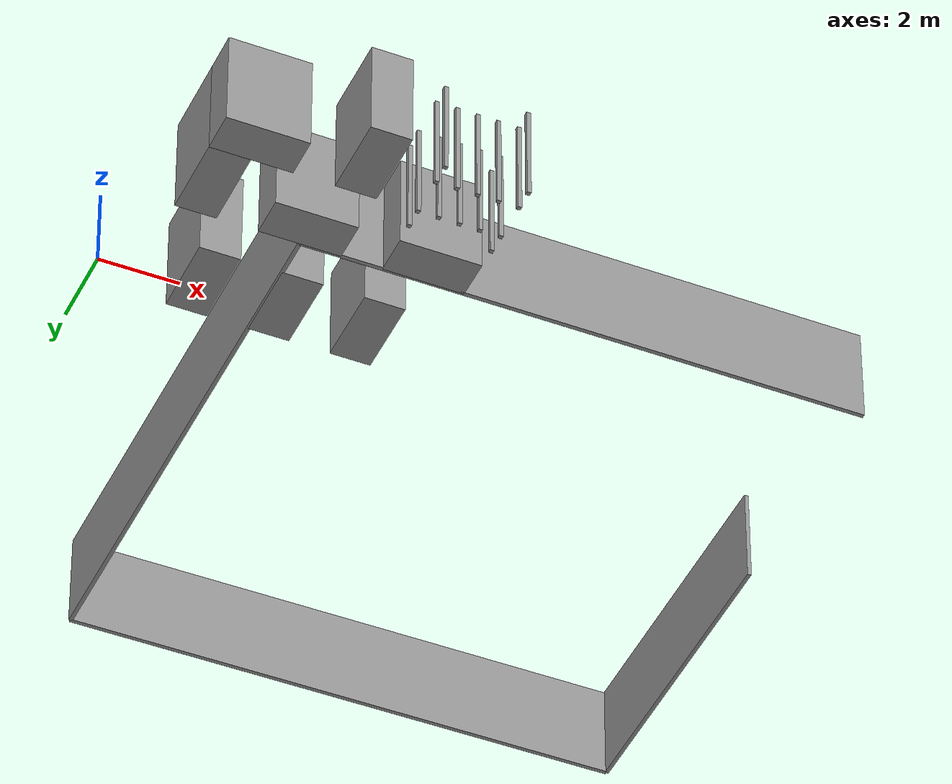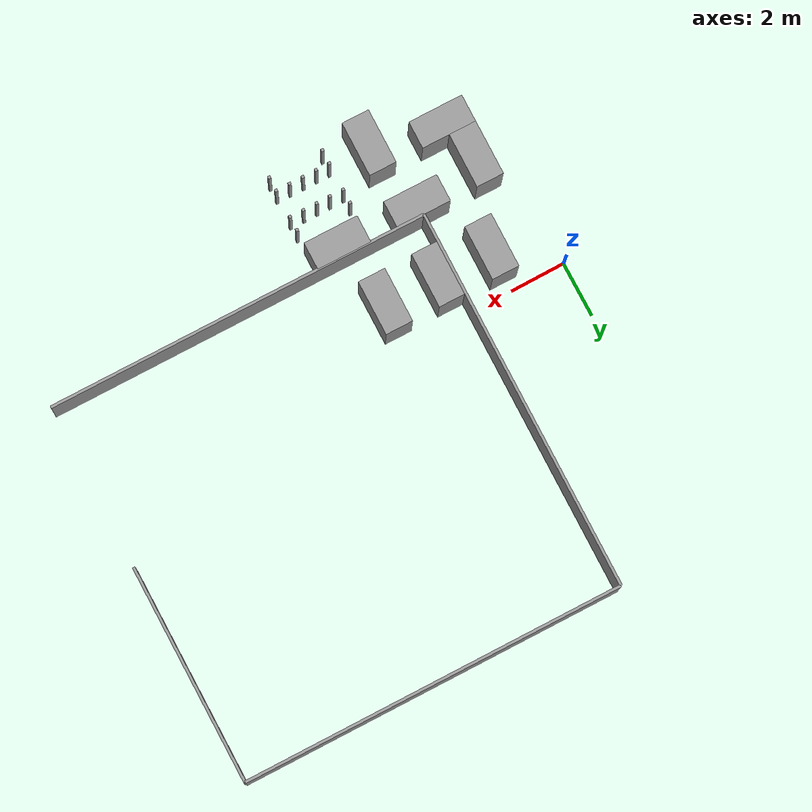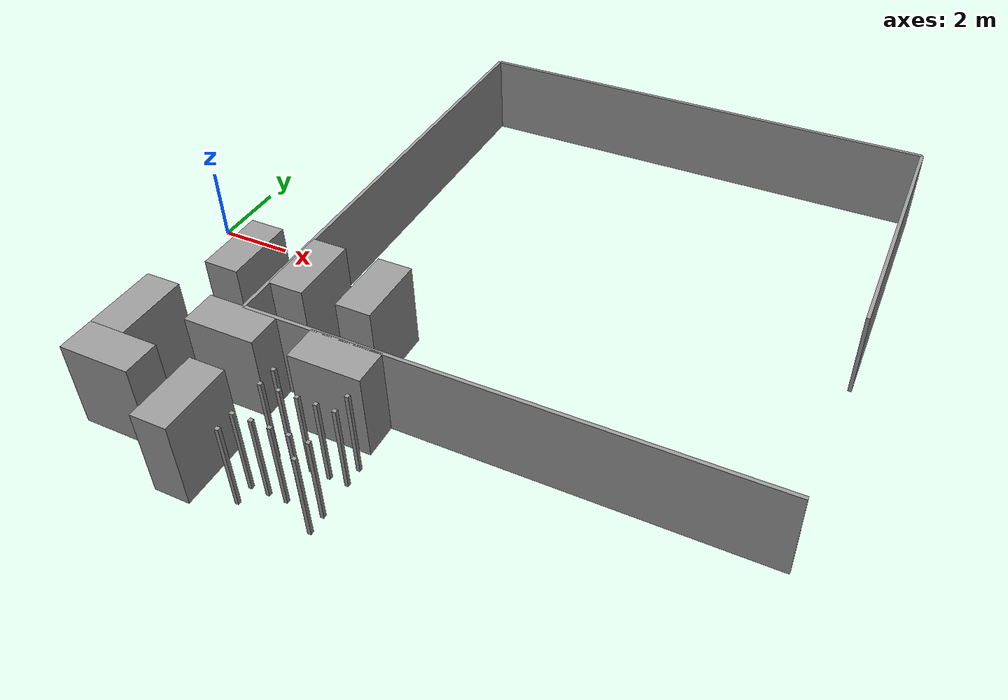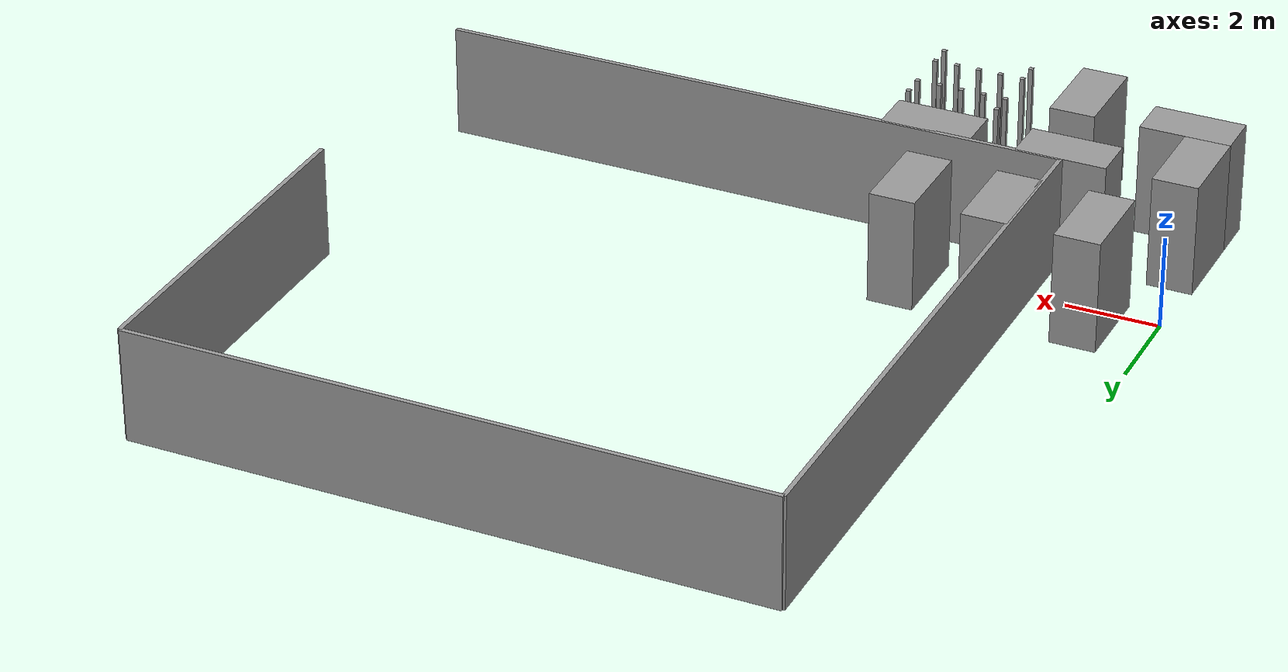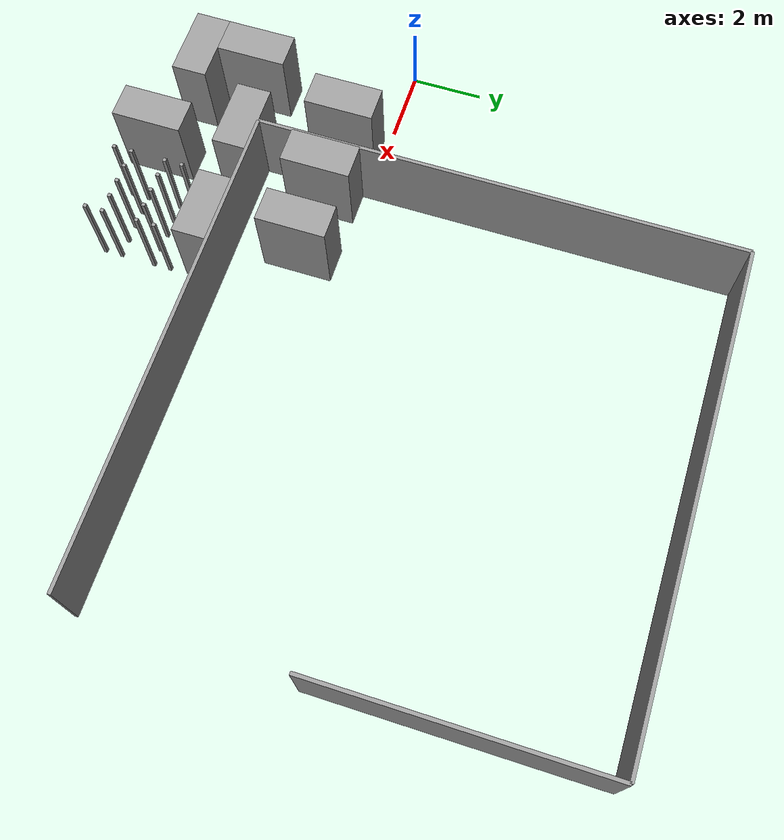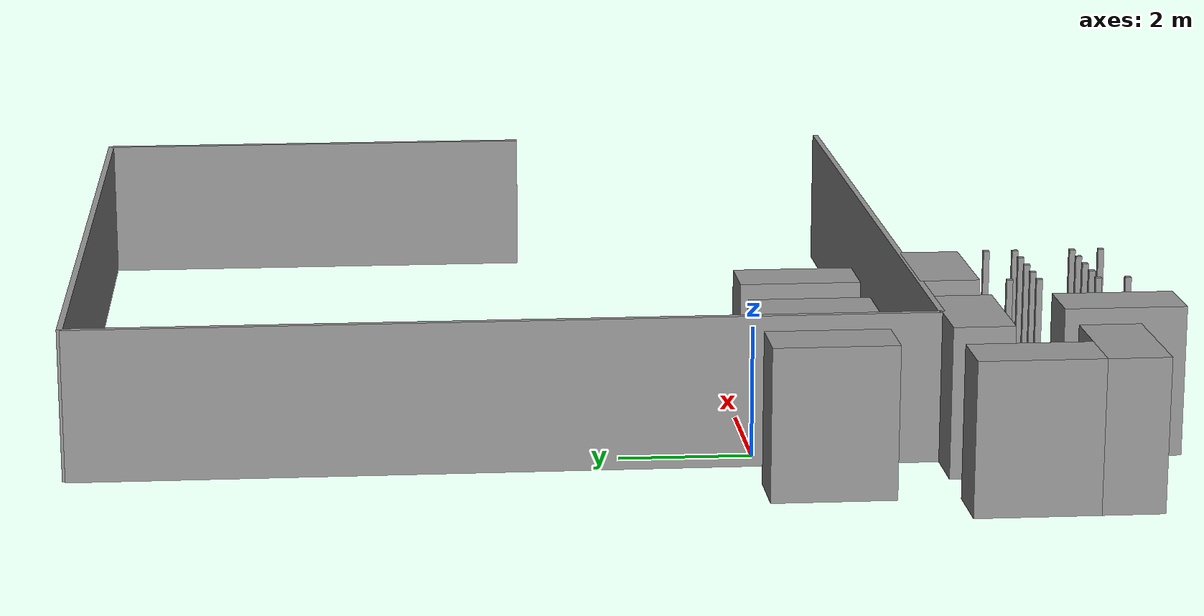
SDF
<?xml version='1.0'?>

<sdf version='1.6'>
  <model name='RFMaze'>

    <link name='Wall_0'>
      <collision name='col'>
        <geometry>
          <box>
            <size>14 0.1 2.5</size>
          </box>
        </geometry>
      </collision>
      <visual name='vis'>
        <geometry>
          <box>
            <size>14 0.1 2.5</size>
          </box>
        </geometry>
        <material>
          <script>
            <uri>file://media/materials/scripts/gazebo.material</uri>
            <name>Gazebo/Grey</name>
          </script>
          <ambient>1 1 1 1</ambient>
        </material>
      </visual>
      <pose>7 0 0 0 0 0</pose>
    </link>
    <link name='Wall_1'>
      <collision name='col'>
        <geometry>
          <box>
            <size>14 0.1 2.5</size>
          </box>
        </geometry>
      </collision>
      <visual name='vis'>
        <geometry>
          <box>
            <size>14 0.1 2.5</size>
          </box>
        </geometry>
        <material>
          <script>
            <uri>file://media/materials/scripts/gazebo.material</uri>
            <name>Gazebo/Grey</name>
          </script>
          <ambient>1 1 1 1</ambient>
        </material>
      </visual>
      <pose>0 7 0 0 0 1.57079632679</pose>
    </link>
    <link name='Wall_2'>
      <collision name='col'>
        <geometry>
          <box>
            <size>14 0.1 2.5</size>
          </box>
        </geometry>
      </collision>
      <visual name='vis'>
        <geometry>
          <box>
            <size>14 0.1 2.5</size>
          </box>
        </geometry>
        <material>
          <script>
            <uri>file://media/materials/scripts/gazebo.material</uri>
            <name>Gazebo/Grey</name>
          </script>
          <ambient>1 1 1 1</ambient>
        </material>
      </visual>
      <pose>7 14 0 0 0 0</pose>
    </link>

    <link name='Wall_3'>
      <collision name='col'>
        <geometry>
          <box>
            <size>8 0.1 2.5</size>
          </box>
        </geometry>
      </collision>
      <visual name='vis'>
        <geometry>
          <box>
            <size>8 0.1 2.5</size>
          </box>
        </geometry>
        <material>
          <script>
            <uri>file://media/materials/scripts/gazebo.material</uri>
            <name>Gazebo/Grey</name>
          </script>
          <ambient>1 1 1 1</ambient>
        </material>
      </visual>
      <pose>14 10 0 0 0 1.57079632679</pose>
    </link>

    <link name='BoxH_0'>
      <collision name='col'>
        <geometry>
          <box>
            <size>2 1 2.5</size>
          </box>
        </geometry>
      </collision>
      <visual name='vis'>
        <geometry>
          <box>
            <size>2 1 2.5</size>
          </box>
        </geometry>
        <material>
          <script>
            <uri>file://media/materials/scripts/gazebo.material</uri>
            <name>Gazebo/Grey</name>
          </script>
          <ambient>1 1 1 1</ambient>
        </material>
      </visual>
      <pose>0 -0.5 0 0 0 0</pose>
    </link>
    <link name='BoxH_1'>
      <collision name='col'>
        <geometry>
          <box>
            <size>2 1 2.5</size>
          </box>
        </geometry>
      </collision>
      <visual name='vis'>
        <geometry>
          <box>
            <size>2 1 2.5</size>
          </box>
        </geometry>
        <material>
          <script>
            <uri>file://media/materials/scripts/gazebo.material</uri>
            <name>Gazebo/Grey</name>
          </script>
          <ambient>1 1 1 1</ambient>
        </material>
      </visual>
      <pose>3 -0.5 0 0 0 0</pose>
    </link>
    <link name='BoxV_2'>
      <collision name='col'>
        <geometry>
          <box>
            <size>1 2 2.5</size>
          </box>
        </geometry>
      </collision>
      <visual name='vis'>
        <geometry>
          <box>
            <size>1 2 2.5</size>
          </box>
        </geometry>
        <material>
          <script>
            <uri>file://media/materials/scripts/gazebo.material</uri>
            <name>Gazebo/Grey</name>
          </script>
          <ambient>1 1 1 1</ambient>
        </material>
      </visual>
      <pose>0.5 2 0 0 0 0</pose>
    </link>
    <link name='BoxV_3'>
      <collision name='col'>
        <geometry>
          <box>
            <size>1 2 2.5</size>
          </box>
        </geometry>
      </collision>
      <visual name='vis'>
        <geometry>
          <box>
            <size>1 2 2.5</size>
          </box>
        </geometry>
        <material>
          <script>
            <uri>file://media/materials/scripts/gazebo.material</uri>
            <name>Gazebo/Grey</name>
          </script>
          <ambient>1 1 1 1</ambient>
        </material>
      </visual>
      <pose>-1.5 2 0 0 0 0</pose>
    </link>
    <link name='BoxV_4'>
      <collision name='col'>
        <geometry>
          <box>
            <size>1 2 2.5</size>
          </box>
        </geometry>
      </collision>
      <visual name='vis'>
        <geometry>
          <box>
            <size>1 2 2.5</size>
          </box>
        </geometry>
        <material>
          <script>
            <uri>file://media/materials/scripts/gazebo.material</uri>
            <name>Gazebo/Grey</name>
          </script>
          <ambient>1 1 1 1</ambient>
        </material>
      </visual>
      <pose>2.5 2 0 0 0 0</pose>
    </link>
    <link name='BoxV_5'>
      <collision name='col'>
        <geometry>
          <box>
            <size>1 2 2.5</size>
          </box>
        </geometry>
      </collision>
      <visual name='vis'>
        <geometry>
          <box>
            <size>1 2 2.5</size>
          </box>
        </geometry>
        <material>
          <script>
            <uri>file://media/materials/scripts/gazebo.material</uri>
            <name>Gazebo/Grey</name>
          </script>
          <ambient>1 1 1 1</ambient>
        </material>
      </visual>
      <pose>-2.5 -1 0 0 0 0</pose>
    </link>
    <link name='BoxV_6'>
      <collision name='col'>
        <geometry>
          <box>
            <size>1 2 2.5</size>
          </box>
        </geometry>
      </collision>
      <visual name='vis'>
        <geometry>
          <box>
            <size>1 2 2.5</size>
          </box>
        </geometry>
        <material>
          <script>
            <uri>file://media/materials/scripts/gazebo.material</uri>
            <name>Gazebo/Grey</name>
          </script>
          <ambient>1 1 1 1</ambient>
        </material>
      </visual>
      <pose>0.5 -3 0 0 0 0</pose>
    </link>
    <link name='BoxH_7'>
      <collision name='col'>
        <geometry>
          <box>
            <size>2 1 2.5</size>
          </box>
        </geometry>
      </collision>
      <visual name='vis'>
        <geometry>
          <box>
            <size>2 1 2.5</size>
          </box>
        </geometry>
        <material>
          <script>
            <uri>file://media/materials/scripts/gazebo.material</uri>
            <name>Gazebo/Grey</name>
          </script>
          <ambient>1 1 1 1</ambient>
        </material>
      </visual>
      <pose>-2 -2.5 0 0 0 0</pose>
    </link>
    <link name='Column_0'>
      <collision name='col'>
        <geometry>
          <box>
            <size>0.1 0.1 2.5</size>
          </box>
        </geometry>
      </collision>
      <visual name='vis'>
        <geometry>
          <box>
            <size>0.1 0.1 2.5</size>
          </box>
        </geometry>
        <material>
          <script>
            <uri>file://media/materials/scripts/gazebo.material</uri>
            <name>Gazebo/Grey</name>
          </script>
          <ambient>1 1 1 1</ambient>
        </material>
      </visual>
      <pose>2 -1.5 0 0 0 0</pose>
    </link>
    <link name='Column_1'>
      <collision name='col'>
        <geometry>
          <box>
            <size>0.1 0.1 2.5</size>
          </box>
        </geometry>
      </collision>
      <visual name='vis'>
        <geometry>
          <box>
            <size>0.1 0.1 2.5</size>
          </box>
        </geometry>
        <material>
          <script>
            <uri>file://media/materials/scripts/gazebo.material</uri>
            <name>Gazebo/Grey</name>
          </script>
          <ambient>1 1 1 1</ambient>
        </material>
      </visual>
      <pose>2 -2 0 0 0 0</pose>
    </link>
    <link name='Column_2'>
      <collision name='col'>
        <geometry>
          <box>
            <size>0.1 0.1 2.5</size>
          </box>
        </geometry>
      </collision>
      <visual name='vis'>
        <geometry>
          <box>
            <size>0.1 0.1 2.5</size>
          </box>
        </geometry>
        <material>
          <script>
            <uri>file://media/materials/scripts/gazebo.material</uri>
            <name>Gazebo/Grey</name>
          </script>
          <ambient>1 1 1 1</ambient>
        </material>
      </visual>
      <pose>2.5 -2 0 0 0 0</pose>
    </link>
    <link name='Column_3'>
      <collision name='col'>
        <geometry>
          <box>
            <size>0.1 0.1 2.5</size>
          </box>
        </geometry>
      </collision>
      <visual name='vis'>
        <geometry>
          <box>
            <size>0.1 0.1 2.5</size>
          </box>
        </geometry>
        <material>
          <script>
            <uri>file://media/materials/scripts/gazebo.material</uri>
            <name>Gazebo/Grey</name>
          </script>
          <ambient>1 1 1 1</ambient>
        </material>
      </visual>
      <pose>3 -2 0 0 0 0</pose>
    </link>
    <link name='Column_4'>
      <collision name='col'>
        <geometry>
          <box>
            <size>0.1 0.1 2.5</size>
          </box>
        </geometry>
      </collision>
      <visual name='vis'>
        <geometry>
          <box>
            <size>0.1 0.1 2.5</size>
          </box>
        </geometry>
        <material>
          <script>
            <uri>file://media/materials/scripts/gazebo.material</uri>
            <name>Gazebo/Grey</name>
          </script>
          <ambient>1 1 1 1</ambient>
        </material>
      </visual>
      <pose>3.5 -2 0 0 0 0</pose>
    </link>
    <link name='Column_5'>
      <collision name='col'>
        <geometry>
          <box>
            <size>0.1 0.1 2.5</size>
          </box>
        </geometry>
      </collision>
      <visual name='vis'>
        <geometry>
          <box>
            <size>0.1 0.1 2.5</size>
          </box>
        </geometry>
        <material>
          <script>
            <uri>file://media/materials/scripts/gazebo.material</uri>
            <name>Gazebo/Grey</name>
          </script>
          <ambient>1 1 1 1</ambient>
        </material>
      </visual>
      <pose>4 -2 0 0 0 0</pose>
    </link>
    <link name='Column_6'>
      <collision name='col'>
        <geometry>
          <box>
            <size>0.1 0.1 2.5</size>
          </box>
        </geometry>
      </collision>
      <visual name='vis'>
        <geometry>
          <box>
            <size>0.1 0.1 2.5</size>
          </box>
        </geometry>
        <material>
          <script>
            <uri>file://media/materials/scripts/gazebo.material</uri>
            <name>Gazebo/Grey</name>
          </script>
          <ambient>1 1 1 1</ambient>
        </material>
      </visual>
      <pose>4 -1.5 0 0 0 0</pose>
    </link>

    <link name='Column_7'>
      <collision name='col'>
        <geometry>
          <box>
            <size>0.1 0.1 2.5</size>
          </box>
        </geometry>
      </collision>
      <visual name='vis'>
        <geometry>
          <box>
            <size>0.1 0.1 2.5</size>
          </box>
        </geometry>
        <material>
          <script>
            <uri>file://media/materials/scripts/gazebo.material</uri>
            <name>Gazebo/Grey</name>
          </script>
          <ambient>1 1 1 1</ambient>
        </material>
      </visual>
      <pose>2 -3.5 0 0 0 0</pose>
    </link>
    <link name='Column_8'>
      <collision name='col'>
        <geometry>
          <box>
            <size>0.1 0.1 2.5</size>
          </box>
        </geometry>
      </collision>
      <visual name='vis'>
        <geometry>
          <box>
            <size>0.1 0.1 2.5</size>
          </box>
        </geometry>
        <material>
          <script>
            <uri>file://media/materials/scripts/gazebo.material</uri>
            <name>Gazebo/Grey</name>
          </script>
          <ambient>1 1 1 1</ambient>
        </material>
      </visual>
      <pose>2 -3 0 0 0 0</pose>
    </link>
    <link name='Column_9'>
      <collision name='col'>
        <geometry>
          <box>
            <size>0.1 0.1 2.5</size>
          </box>
        </geometry>
      </collision>
      <visual name='vis'>
        <geometry>
          <box>
            <size>0.1 0.1 2.5</size>
          </box>
        </geometry>
        <material>
          <script>
            <uri>file://media/materials/scripts/gazebo.material</uri>
            <name>Gazebo/Grey</name>
          </script>
          <ambient>1 1 1 1</ambient>
        </material>
      </visual>
      <pose>2.5 -3 0 0 0 0</pose>
    </link>
    <link name='Column_10'>
      <collision name='col'>
        <geometry>
          <box>
            <size>0.1 0.1 2.5</size>
          </box>
        </geometry>
      </collision>
      <visual name='vis'>
        <geometry>
          <box>
            <size>0.1 0.1 2.5</size>
          </box>
        </geometry>
        <material>
          <script>
            <uri>file://media/materials/scripts/gazebo.material</uri>
            <name>Gazebo/Grey</name>
          </script>
          <ambient>1 1 1 1</ambient>
        </material>
      </visual>
      <pose>3 -3 0 0 0 0</pose>
    </link>
    <link name='Column_11'>
      <collision name='col'>
        <geometry>
          <box>
            <size>0.1 0.1 2.5</size>
          </box>
        </geometry>
      </collision>
      <visual name='vis'>
        <geometry>
          <box>
            <size>0.1 0.1 2.5</size>
          </box>
        </geometry>
        <material>
          <script>
            <uri>file://media/materials/scripts/gazebo.material</uri>
            <name>Gazebo/Grey</name>
          </script>
          <ambient>1 1 1 1</ambient>
        </material>
      </visual>
      <pose>3.5 -3 0 0 0 0</pose>
    </link>
    <link name='Column_12'>
      <collision name='col'>
        <geometry>
          <box>
            <size>0.1 0.1 2.5</size>
          </box>
        </geometry>
      </collision>
      <visual name='vis'>
        <geometry>
          <box>
            <size>0.1 0.1 2.5</size>
          </box>
        </geometry>
        <material>
          <script>
            <uri>file://media/materials/scripts/gazebo.material</uri>
            <name>Gazebo/Grey</name>
          </script>
          <ambient>1 1 1 1</ambient>
        </material>
      </visual>
      <pose>4 -3 0 0 0 0</pose>
    </link>
    <link name='Column_13'>
      <collision name='col'>
        <geometry>
          <box>
            <size>0.1 0.1 2.5</size>
          </box>
        </geometry>
      </collision>
      <visual name='vis'>
        <geometry>
          <box>
            <size>0.1 0.1 2.5</size>
          </box>
        </geometry>
        <material>
          <script>
            <uri>file://media/materials/scripts/gazebo.material</uri>
            <name>Gazebo/Grey</name>
          </script>
          <ambient>1 1 1 1</ambient>
        </material>
      </visual>
      <pose>4 -3.5 0 0 0 0</pose>
    </link>
    <static>1</static>
    <pose>3.5 -3.5 0 0 0 0</pose>
  </model>
</sdf>
